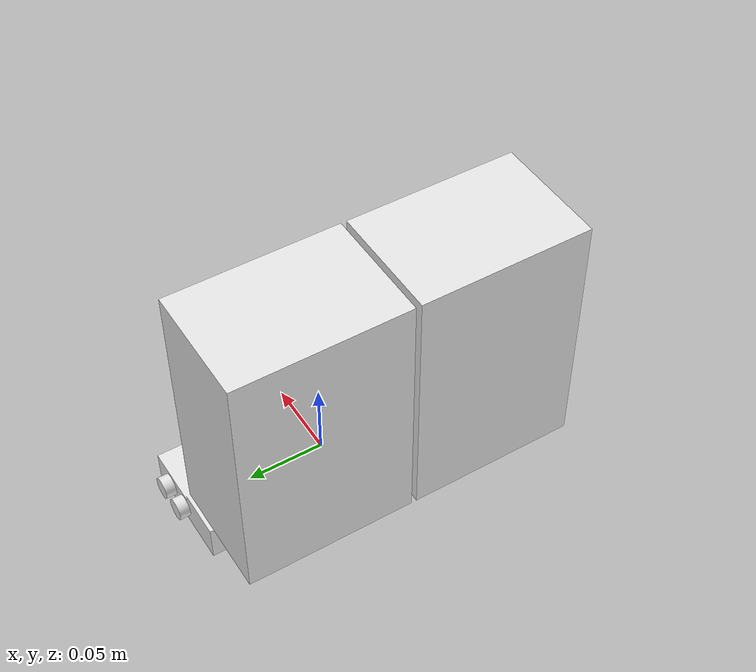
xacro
<?xml version="1.0" ?>
<robot name="za6" xmlns:xacro="http://ros.org/wiki/xacro">
  <xacro:arg name="prefix" default=""/>
  <xacro:include filename="$(find za6_tools)/urdf/versabuilt_multigrip_macro.xacro"/>
  <xacro:versabuilt_multigrip_macro prefix="$(arg prefix)"/>

  <!-- 'flange' frame: default pose reference frame -->
  <link name="flange" />
  <joint name="flange-$(arg prefix)za6_multigrip_adapter" type="fixed">
    <origin xyz="0 0 0" rpy="0 0 ${pi}"/>
    <axis xyz="0 0 1"/>
    <parent link="flange"/>
    <child link="$(arg prefix)za6_multigrip_adapter"/>
  </joint>

</robot>

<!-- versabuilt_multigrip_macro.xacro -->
<robot xmlns:xacro="http://www.ros.org/wiki/xacro">
  <xacro:macro name="versabuilt_multigrip_macro" params="prefix">

    <material name="${prefix}Aluminium">
      <color rgba="0.9 0.9 0.9 0.99"/>
    </material>

    <!-- link list -->
    <link name="${prefix}za6_multigrip_adapter">
    </link>

    <link name="${prefix}multigrip_base_and_fixed_jaw">
      <visual>
        <geometry>
          <mesh filename="package://za6_tools/meshes/versabuilt_multigrip_base_and_fixed_jaw.stl"/>
        </geometry>
        <origin rpy="0.0 0.0 0.0" xyz="0 0 0"/>
        <material name="${prefix}Aluminium">
        </material>
      </visual>
      <collision>
        <geometry>
          <mesh filename="package://za6_tools/meshes/versabuilt_multigrip_base_and_fixed_jaw_collision.stl"/>
        </geometry>
        <origin rpy="0.0 0.0 0.0" xyz="0 0 0"/>
      </collision>
      <inertial>
        <mass value="100"/>
        <inertia ixx="1.0" ixy="0.0" ixz="0.0" iyy="1.0" iyz="0.0" izz="1.0"/>
      </inertial>
    </link>

    <link name="${prefix}multigrip_moving_jaw">
      <visual>
        <geometry>
          <mesh filename="package://za6_tools/meshes/versabuilt_multigrip_moving_jaw.stl"/>
        </geometry>
        <origin rpy="0.0 0.0 0.0" xyz="0 0 0"/>
        <material name="${prefix}Aluminium">
        </material>
      </visual>
      <collision>
        <geometry>
          <mesh filename="package://za6_tools/meshes/versabuilt_multigrip_moving_jaw_collision.stl"/>
        </geometry>
        <origin rpy="0.0 0.0 0.0" xyz="0 0 0"/>
      </collision>
      <inertial>
        <mass value="100"/>
        <inertia ixx="1.0" ixy="0.0" ixz="0.0" iyy="1.0" iyz="0.0" izz="1.0"/>
      </inertial>
    </link>

    <!-- joint list -->
    <joint name="${prefix}adapter-multigrip_base_and_fixed_jaw" type="fixed">
      <parent link="${prefix}za6_multigrip_adapter"/>
      <child link="${prefix}multigrip_base_and_fixed_jaw"/>
      <axis xyz="0 0 1"/>
      <origin xyz="0 0 0" rpy="${pi/2.0} -${pi/2.0} -${pi/2.0}"/>
    </joint>

    <joint name="${prefix}multigrip_base_and_fixed_jaw-multigrip_moving_jaw" type="fixed">
      <parent link="${prefix}multigrip_base_and_fixed_jaw" />
      <child link="${prefix}multigrip_moving_jaw" />
      <axis xyz="0 0 1"/>
      <origin xyz="0.0 0 0.0" rpy="0 0 0" />
    </joint>

  </xacro:macro>
</robot>
